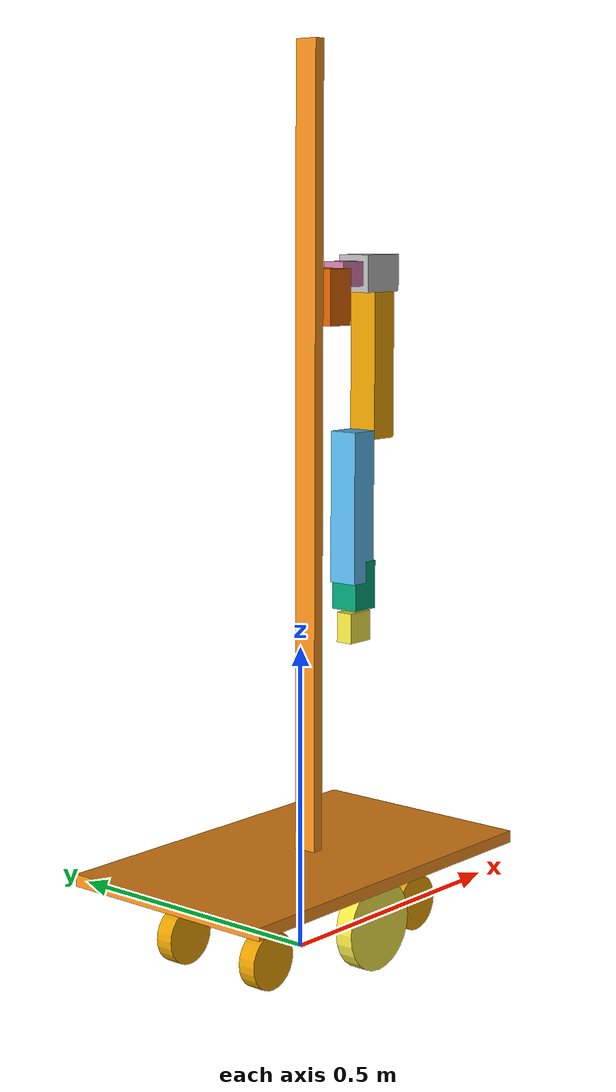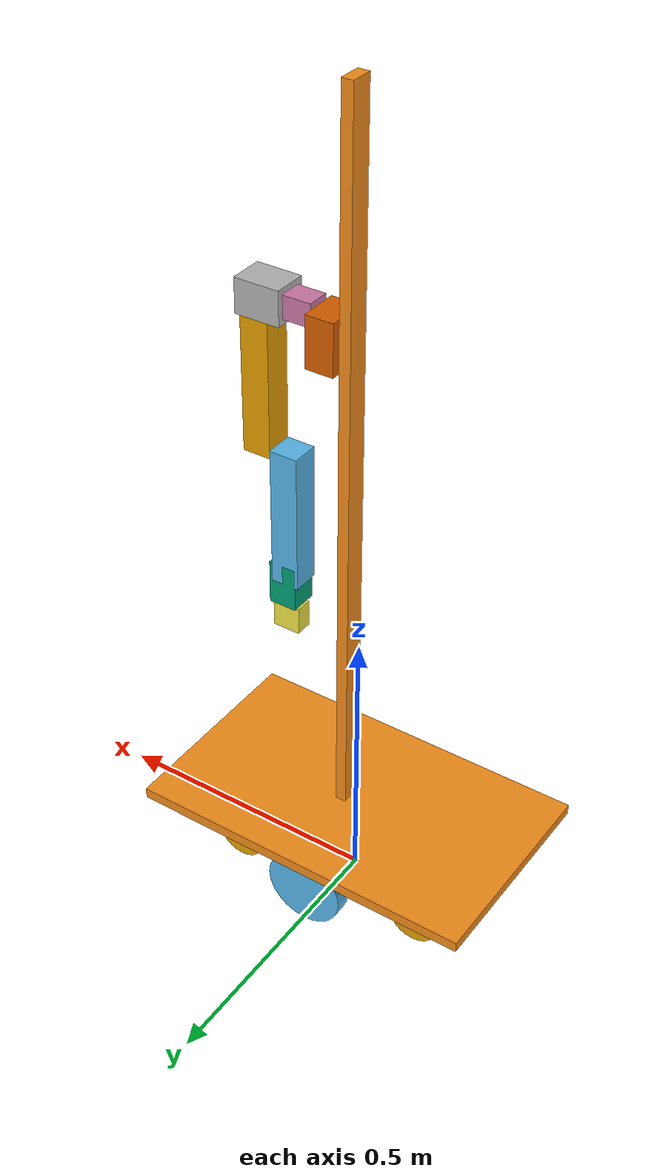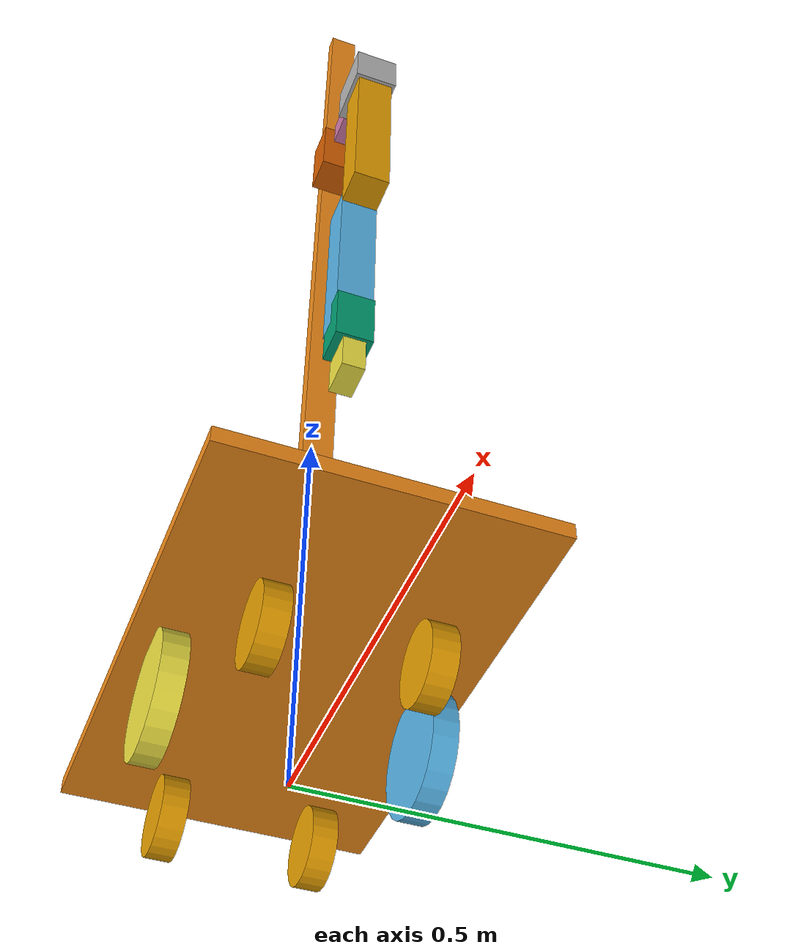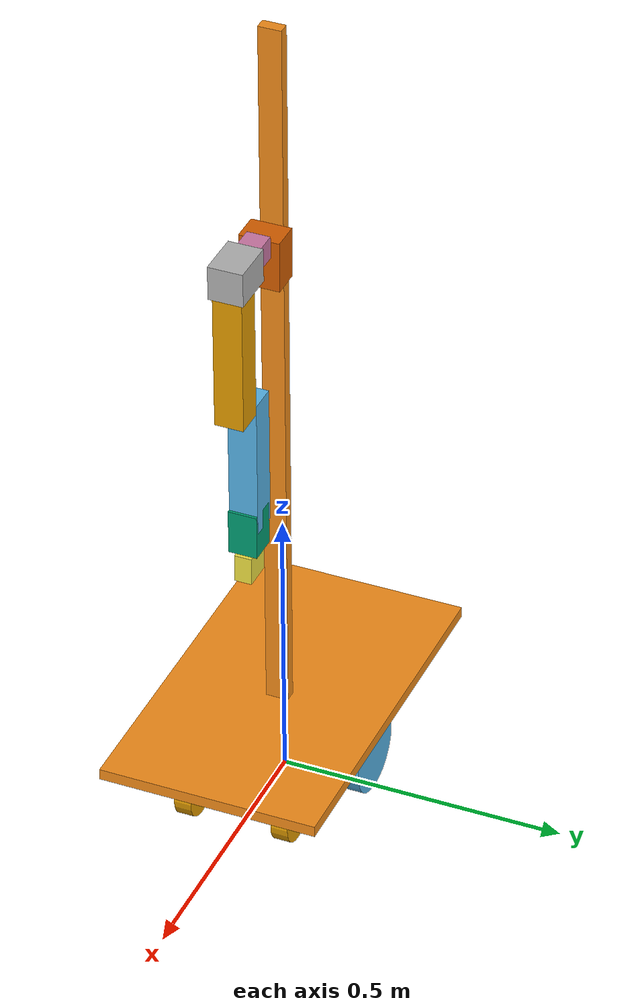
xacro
<?xml version="1.0"?>
<!-- Revolute-Revolute Manipulator -->
<robot name="interaction_robot" xmlns:xacro="http://www.ros.org/wiki/xacro">
  <!-- Constants for robot dimensions -->
  <xacro:property name="PI" value="3.1415926535897931"/>

  <!-- Import Rviz colors -->
  <xacro:include filename="$(find icart_mini_description)/urdf/materials.xacro" />
  <xacro:include filename="$(find orne_description)/urdf/interaction_robot.gazebo"/>

  <!-- Base Link -->
  <link name="base_link">
    <collision>
      <origin xyz="0 0 0.15" rpy="0 0 0"/>
      <geometry>
	<box size=".645 .385 .02"/>
      </geometry>
    </collision>

    <visual>
      <origin xyz="0 0 0.15" rpy="0 0 0"/>
      <geometry>
	<box size=".64 .385 .02"/>
      </geometry>
      <material name="orange"/>
    </visual>

    <collision>
      <origin xyz="0.02 0 0.81" rpy="0 0 0"/>
      <geometry>
  <box size=".020 .040 1.30"/>
      </geometry>
    </collision>

    <visual>
      <origin xyz="0.02 0 0.81" rpy="0 0 0"/>
      <geometry>
  <box size=".020 .040 1.30"/>
      </geometry>
      <material name="orange"/>
    </visual>

    <collision name="collision">
      <origin xyz="-0.185 -0.0875 0.05" rpy="0 1.5707 1.5707"/>
      <geometry>
        <cylinder  length="0.03" radius="0.04625"/>
      </geometry>
    </collision>
    <visual name="visual">
      <origin xyz="-0.185 -0.0875 0.05" rpy="0 1.5707 1.5707"/>
      <geometry>
        <cylinder  length="0.03" radius="0.04625"/>
      </geometry>
    </visual>

    <collision name="collision">
      <origin xyz="-0.185 0.0875 0.05" rpy="0 1.5707 1.5707"/>
      <geometry>
        <cylinder  length="0.03" radius="0.04625"/>
      </geometry>
    </collision>
    <visual name="visual">
      <origin xyz="-0.185 0.0875 0.05" rpy="0 1.5707 1.5707"/>
      <geometry>
        <cylinder  length="0.03" radius="0.04625"/>
      </geometry>
    </visual>

    <collision name="collision">
      <origin xyz="0.18 -0.0875 0.05" rpy="0 1.5707 1.5707"/>
      <geometry>
        <cylinder  length="0.03" radius="0.04625"/>
      </geometry>
    </collision>
    <visual name="visual">
      <origin xyz="0.18 -0.0875 0.05" rpy="0 1.5707 1.5707"/>
      <geometry>
        <cylinder  length="0.03" radius="0.04625"/>
      </geometry>
    </visual>

    <collision name="collision">
      <origin xyz="0.18 0.0875 0.05" rpy="0 1.5707 1.5707"/>
      <geometry>
        <cylinder  length="0.03" radius="0.04625"/>
      </geometry>
    </collision>
    <visual name="visual">
      <origin xyz="0.18 0.0875 0.05" rpy="0 1.5707 1.5707"/>
      <geometry>
        <cylinder  length="0.03" radius="0.04625"/>
      </geometry>
    </visual>

    <inertial>
       <mass value="20" />
       <origin xyz="0 0 0" rpy="0 0 0"/>
       <inertia ixx="1" ixy="0" ixz="0" iyy="1" iyz="0" izz="1" />
    </inertial>
  </link>

  <link name="visual_left_wheel">
    <visual name="visual">
      <origin xyz="0 0 0" rpy="0 1.5707 1.5707"/>
      <geometry>
        <cylinder  length="0.03" radius="0.0725"/>
      </geometry>
    </visual>
  </link>

  <joint type="fixed" name="visual_left_wheel_hinge">
    <origin xyz="0 0.15 0.0725" rpy="0 0 0"/>
    <child link="visual_left_wheel">visual_left_wheel</child>
    <parent link="base_link">base_link</parent>
    <axis xyz="0 1 0"/>
  </joint>

  <link name="left_wheel">
    <collision name="collision">
      <origin xyz="0 -0 0" rpy="0 1.5707 1.5707"/>
      <geometry>
         <cylinder  length="0.03" radius="0.0725"/>
      </geometry>
    </collision>
    <inertial>
      <mass value="1" />
      <origin xyz="0 0.0 0"/>
      <inertia ixx="0.1" ixy="0" ixz="0" iyy="0.1" iyz="0" izz="0.1" />
    </inertial>
  </link>

  <joint type="revolute" name="left_wheel_hinge">
    <origin xyz="0 0.15 0.07258" rpy="0 0 0"/>
    <child link="left_wheel">left_wheel</child>
    <parent link="base_link">base_link</parent>
    <axis xyz="0 1 0"/>
    <limit effort="100" velocity="100.0"  lower="-5000" upper="5000" />
  </joint>

  <link name="visual_right_wheel">
    <visual name="visual">
      <origin xyz="0 -0 0" rpy="0 1.5707 1.5707"/>
      <geometry>
        <cylinder  length="0.03" radius="0.0725"/>
      </geometry>
    </visual>
  </link>

  <joint type="fixed" name="visual_right_wheel_hinge">
    <origin xyz="0 -0.15 0.0725" rpy="0 0 0"/>
    <child link="visual_right_wheel">visual_right_wheel</child>
    <parent link="base_link">base_link</parent>
    <axis xyz="0 1 0"/>
  </joint>

  <link name="right_wheel">
    <collision name="collision">
      <origin xyz="0 -0 0" rpy="0 1.5707 1.5707"/>
      <geometry>
         <cylinder  length="0.03" radius="0.0725"/>
      </geometry>
    </collision>
    <inertial>
      <mass value="1" />
      <origin xyz="0 0.0 0"/>
      <inertia ixx="0.1" ixy="0" ixz="0" iyy="0.1" iyz="0" izz="0.1" />
    </inertial>
  </link>

  <joint type="revolute" name="right_wheel_hinge">
    <origin xyz="0 -0.15 0.0725" rpy="0 0 0"/>
    <child link="right_wheel">right_wheel</child>
    <parent link="base_link">base_link</parent>
    <axis xyz="0 1 0"/>
    <limit effort="100" velocity="100.0"  lower="-5000" upper="5000" />
  </joint>

  <transmission name="tran1">
    <type>transmission_interface/SimpleTransmission</type>
    <joint name="left_wheel_hinge">
      <hardwareInterface>VelocityJointInterface</hardwareInterface>
    </joint>
  <actuator name="left_motor">
      <hardwareInterface>VelocityJointInterface</hardwareInterface>
      <mechanicalReduction>1</mechanicalReduction>
    </actuator>
  </transmission>

  <transmission name="tran2">
    <type>transmission_interface/SimpleTransmission</type>
    <joint name="right_wheel_hinge">
      <hardwareInterface>VelocityJointInterface</hardwareInterface>
    </joint>
  <actuator name="right_motor">
      <hardwareInterface>VelocityJointInterface</hardwareInterface>
      <mechanicalReduction>1</mechanicalReduction>
    </actuator>
  </transmission>

  <!-- arm -->

  <joint type="fixed" name="arm_base_joint">
    <parent link="base_link"/>
    <child link="arm_base"/>
    <origin xyz="0.055 0.0 1.06" rpy="0 0 0"/>
  </joint>

  <link name="arm_base">
    <collision>
      <origin xyz="0.0 0 0.0" rpy="0 0 0"/>
      <geometry>
	      <box size=".05 .07 .09"/>
      </geometry>
    </collision>
    <visual name="visual">
      <origin xyz="0.0 0 0.0" rpy="0 0 0"/>
      <geometry>
	      <box size=".05 .07 .09"/>
      </geometry>
    </visual>
  </link>

  <joint type="revolute" name="arm_joint_0">
    <parent link="arm_base"/>
    <child link="arm_link_1"/>
    <origin xyz="0.025 0.0 0.035" rpy="0 0 0"/>
    <axis xyz="1 0 0" rpy="0 0 0"/>
    <limit effort="100" velocity="100.0"  lower="-1.5" upper="1.5" />
  </joint>

  <link name="arm_link_1">
    <collision>
      <origin xyz="0.035 0 0.0" rpy="0 0 0"/>
      <geometry>
	      <box size="0.07 0.04 0.04"/>
      </geometry>
    </collision>
    <visual name="visual">
      <origin xyz="0.035 0 0.0" rpy="0 0 0"/>
      <geometry>
	      <box size="0.07 0.04 0.04"/>
      </geometry>
    </visual>
  </link>

  <joint type="revolute" name="arm_joint_1">
    <parent link="arm_link_1"/>
    <child link="arm_link_2"/>
    <origin xyz="0.05 0.0 0.0" rpy="0 0 0"/>
    <axis xyz="0 0 1" rpy="0 0 0"/>
    <limit effort="100" velocity="100.0"  lower="-1.5" upper="1.5" />
  </joint>

   <link name="arm_link_2">
    <collision>
      <origin xyz="0.04 0 0" rpy="0 0 0"/>
      <geometry>
	      <box size="0.08 0.06 0.06"/>
      </geometry>
    </collision>
    <visual name="visual">
      <origin xyz="0.04 0 0" rpy="0 0 0"/>
      <geometry>
	      <box size="0.08 0.06 0.06"/>
      </geometry>
    </visual>
  </link>

  <joint type="revolute" name="arm_joint_2">
    <parent link="arm_link_2"/>
    <child link="arm_link_3"/>
    <origin xyz="0.05 0.0 0.0" rpy="0 0 0"/>
    <axis xyz="0 1 0" rpy="0 0 -1.57"/>
    <limit effort="100" velocity="100.0"  lower="-3.14" upper="0" />
  </joint>

  <link name="arm_link_3">
    <collision>
      <origin xyz="0.0 0. -0.13" rpy="0 0 0"/>
      <geometry>
	      <box size="0.05 0.05 0.28"/>
      </geometry>
    </collision>
    <visual name="visual">
      <origin xyz="0.0 0. -0.13" rpy="0 0 0"/>
      <geometry>
	      <box size="0.05 0.05 0.28"/>
      </geometry>
    </visual>
  </link>

  <joint type="revolute" name="arm_joint_3">
    <parent link="arm_link_3"/>
    <child link="arm_link_4"/>
    <origin xyz="0.0 0.0 -0.25" rpy="0 0 3.14"/>
    <axis xyz="0 1 0" rpy="0 0 0"/>
    <limit effort="100" velocity="100.0"  lower="0" upper="3.14" />
  </joint>

  <link name="arm_link_4">
    <collision>
      <origin xyz="0.05 0 -0.13" rpy="0 0 0"/>
      <geometry>
	      <box size="0.05 0.05 0.25"/>
      </geometry>
    </collision>
    <visual name="visual">
      <origin xyz="0.05 0 -0.13" rpy="0 0 0"/>
      <geometry>
	      <box size="0.05 0.05 0.25"/>
      </geometry>
    </visual>
  </link>

  <joint type="revolute" name="arm_joint_4">
    <parent link="arm_link_4"/>
    <child link="arm_link_5"/>
    <origin xyz="0.045 0.0 -0.23" rpy="0 0 3.14"/>
    <axis xyz="0 1 0" rpy="0 0 0"/>
    <limit effort="100" velocity="100.0"  lower="-1.57" upper="1.57" />
  </joint>

  <link name="arm_link_5">
    <collision>
      <origin xyz="0.0 0 -0.03" rpy="0 0 0"/>
      <geometry>
	      <box size="0.05 0.05 0.08"/>
      </geometry>
    </collision>
    <visual name="visual">
      <origin xyz="0.0 0 -0.03" rpy="0 0 0"/>
      <geometry>
	      <box size="0.05 0.05 0.08"/>
      </geometry>
    </visual>
  </link>

  <joint type="revolute" name="arm_joint_5">
    <parent link="arm_link_5"/>
    <child link="arm_link_6"/>
    <origin xyz="0.0 0.0 -0.06" rpy="0 0 0"/>
    <axis xyz="1 0 0" rpy="0 0 0"/>
    <limit effort="100" velocity="100.0"  lower="-1.57" upper="1.57" />
  </joint>

  <link name="arm_link_6">
    <collision>
      <origin xyz="0.0 0 -0.04" rpy="0 0 0"/>
      <geometry>
	      <box size="0.05 0.03 0.05"/>
      </geometry>
    </collision>
    <visual name="visual">
      <origin xyz="0.0 0 -0.04" rpy="0 0 0"/>
      <geometry>
	      <box size="0.05 0.03 0.05"/>
      </geometry>
    </visual>
  </link>

</robot>
